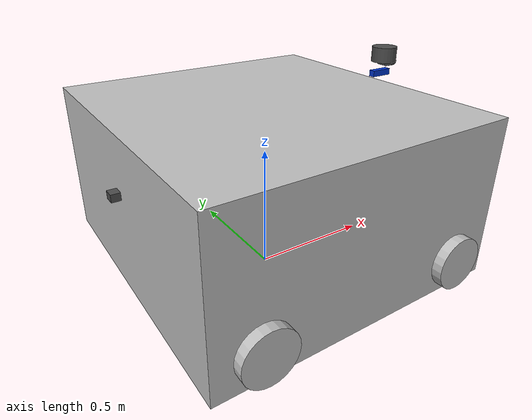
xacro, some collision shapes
<?xml version="1.0"?>
<robot name="tulpar_robot" xmlns:xacro="http://www.ros.org/wiki/xacro">

  <material name="aluminium">
    <color rgba="0.75 0.75 0.75 1.0"/>
  </material>

  <material name="black">
    <color rgba="0.1 0.1 0.1 1.0"/>
  </material>

  <material name="camera_blue">
    <color rgba="0.0 0.2 0.8 1.0"/>
  </material>

  <material name="sensor_gray">
    <color rgba="0.3 0.3 0.3 1.0"/>
  </material>

  <link name="base_footprint"/>

  <joint name="base_joint" type="fixed">
    <parent link="base_footprint"/>
    <child link="base_link"/>
    <origin xyz="0 0 0.200" rpy="0 0 0"/>
  </joint>

  <link name="base_link">
    <visual>
      <origin xyz="0.592 -0.225 0.110" rpy="0 0 1.5708"/>
      <geometry>
        <mesh filename="package://tulpar_description/meshes/tulpar_govde_final.stl" scale="0.001 0.001 0.001"/>
      </geometry>
      <material name="aluminium"/>
    </visual>
    <collision>
      <origin xyz="0 0 0.1925" rpy="0 0 0"/>
      <geometry>
        <box size="1.150 1.207 0.615"/>
      </geometry>
    </collision>
    <inertial>
      <mass value="65.0"/>
      <origin xyz="0 0 0" rpy="0 0 0"/>
      <inertia ixx="9.94" ixy="0.0" ixz="0.0" iyy="9.21" iyz="0.0" izz="15.06"/>
    </inertial>
  </link>

  <xacro:macro name="wheel" params="name x y">
    <link name="${name}">
      <visual>
    <geometry>
      <cylinder radius="0.10" length="0.125"/>
    </geometry>
    <material name="aluminium"/>
  </visual>

      <collision>
        <geometry>
          <cylinder radius="0.20" length="0.12"/>
        </geometry>
      </collision>
      <inertial>
        <mass value="3.5"/>
        <inertia ixx="0.039" ixy="0" ixz="0" iyy="0.039" iyz="0" izz="0.070"/>
      </inertial>
    </link>

    <joint name="joint_${name}" type="continuous">
      <parent link="base_link"/>
      <child link="${name}"/>
      <origin xyz="${x} ${y} 0" rpy="-1.5708 0 0"/>
      <axis xyz="0 0 1"/>
      <dynamics damping="0.1" friction="0.5"/>
    </joint>
  </xacro:macro>

  <xacro:wheel name="wheel_fl" x="0.4" y="0.58"/>
  <xacro:wheel name="wheel_rl" x="-0.4" y="0.58"/>
  <xacro:wheel name="wheel_fr" x="0.4" y="-0.58"/>
  <xacro:wheel name="wheel_rr" x="-0.4" y="-0.58"/>

  <link name="lidar_link">
    <visual>
      <geometry>
        <cylinder radius="0.05" length="0.06"/>
      </geometry>
      <material name="sensor_gray"/>
    </visual>
    <inertial>
      <mass value="0.25"/>
      <inertia ixx="0.0015" ixy="0" ixz="0" iyy="0.0015" iyz="0" izz="0.0015"/>
    </inertial>
  </link>

  <joint name="lidar_joint" type="fixed">
    <parent link="base_link"/>
    <child link="lidar_link"/>
    <origin xyz="0.58 -0.015 0.61" rpy="0 0 0"/>
  </joint>

  <link name="laser_frame"/>
  <joint name="laser_frame_joint" type="fixed">
    <parent link="lidar_link"/>
    <child link="laser_frame"/>
    <origin xyz="0 0 0" rpy="0 0 0"/>
  </joint>

  <!-- Intel RealSense D435if depth camera. -->
  <link name="d435if_link">
    <visual>
      <geometry>
        <box size="0.09 0.025 0.025"/>
      </geometry>
      <material name="camera_blue"/>
    </visual>
    <inertial>
      <mass value="0.08"/>
      <inertia ixx="0.001" ixy="0" ixz="0" iyy="0.001" iyz="0" izz="0.001"/>
    </inertial>
  </link>

  <joint name="d435if_joint" type="fixed">
    <parent link="base_link"/>
    <child link="d435if_link"/>
    <origin xyz="0.58 0.0 0.53" rpy="0 0 0"/>
  </joint>

  <link name="d435if_color_frame"/>
  <joint name="d435if_color_joint" type="fixed">
    <parent link="d435if_link"/>
    <child link="d435if_color_frame"/>
    <origin xyz="0 0 0" rpy="0 0 0"/>
  </joint>

  <link name="d435if_color_optical_frame"/>
  <joint name="d435if_color_optical_joint" type="fixed">
    <parent link="d435if_color_frame"/>
    <child link="d435if_color_optical_frame"/>
    <origin xyz="0 0 0" rpy="-1.5708 0 -1.5708"/>
  </joint>

  <link name="d435if_depth_frame"/>
  <joint name="d435if_depth_joint" type="fixed">
    <parent link="d435if_link"/>
    <child link="d435if_depth_frame"/>
    <origin xyz="0 0 0" rpy="0 0 0"/>
  </joint>

  <link name="d435if_depth_optical_frame"/>
  <joint name="d435if_depth_optical_joint" type="fixed">
    <parent link="d435if_depth_frame"/>
    <child link="d435if_depth_optical_frame"/>
    <origin xyz="0 0 0" rpy="-1.5708 0 -1.5708"/>
  </joint>

  <!-- Raspberry Pi HQ camera with 16 mm telephoto lens (atis kamerasi). -->
  <link name="rpi_hq_camera_link">
    <visual>
      <origin xyz="-0.008 0 0" rpy="0 0 0"/>
      <geometry>
        <box size="0.038 0.038 0.018"/>
      </geometry>
      <material name="sensor_gray"/>
    </visual>
    <visual>
      <origin xyz="0.020 0 0" rpy="0 1.5708 0"/>
      <geometry>
        <cylinder radius="0.018" length="0.040"/>
      </geometry>
      <material name="black"/>
    </visual>
    <inertial>
      <mass value="0.09"/>
      <inertia ixx="0.0008" ixy="0" ixz="0" iyy="0.0008" iyz="0" izz="0.0005"/>
    </inertial>
  </link>

  <joint name="rpi_hq_camera_joint" type="fixed">
    <parent link="base_link"/>
    <child link="rpi_hq_camera_link"/>
    <origin xyz="0.58 -0.03 0.58" rpy="0 0 0"/>
  </joint>

  <link name="rpi_hq_camera_optical_frame"/>
  <joint name="rpi_hq_camera_optical_joint" type="fixed">
    <parent link="rpi_hq_camera_link"/>
    <child link="rpi_hq_camera_optical_frame"/>
    <origin xyz="0 0 0" rpy="-1.5708 0 -1.5708"/>
  </joint>

  <!-- Rear camera: SJCAM SJ4000 action camera. -->
  <link name="rear_camera_link">
    <visual>
      <geometry>
        <box size="0.059 0.041 0.029"/>
      </geometry>
      <material name="sensor_gray"/>
    </visual>
    <inertial>
      <mass value="0.058"/>
      <inertia ixx="0.0006" ixy="0" ixz="0" iyy="0.0006" iyz="0" izz="0.0006"/>
    </inertial>
  </link>

  <joint name="rear_camera_joint" type="fixed">
    <parent link="base_link"/>
    <child link="rear_camera_link"/>
    <origin xyz="-0.58 0.0 0.28" rpy="0 0 3.14159"/>
  </joint>

  <link name="rear_camera_optical_frame"/>
  <joint name="rear_camera_optical_joint" type="fixed">
    <parent link="rear_camera_link"/>
    <child link="rear_camera_optical_frame"/>
    <origin xyz="0 0 0" rpy="-1.5708 0 -1.5708"/>
  </joint>

  <gazebo>
    <plugin filename="gz-sim-joint-state-publisher-system" name="gz::sim::systems::JointStatePublisher">
      <topic>/joint_states</topic>
    </plugin>
  </gazebo>

  <gazebo>
    <plugin filename="gz-sim-diff-drive-system" name="gz::sim::systems::DiffDrive">
      <left_joint>joint_wheel_fl</left_joint>
      <left_joint>joint_wheel_rl</left_joint>
      <right_joint>joint_wheel_fr</right_joint>
      <right_joint>joint_wheel_rr</right_joint>
      <wheel_separation>1.16</wheel_separation>
      <wheel_radius>0.20</wheel_radius>
      <max_linear_velocity>1.0</max_linear_velocity>
      <max_angular_velocity>3.0</max_angular_velocity>
      <max_wheel_torque>25.0</max_wheel_torque>
      <max_linear_acceleration>2.0</max_linear_acceleration>
      <topic>/cmd_vel</topic>
      <odom_topic>/odom</odom_topic>
      <frame_id>odom</frame_id>
      <child_frame_id>base_footprint</child_frame_id>
      <odom_publish_frequency>30</odom_publish_frequency>
    </plugin>
  </gazebo>

  <gazebo reference="lidar_link">
    <sensor name="ydlidar_tg30" type="gpu_lidar">
     <update_rate>2</update_rate>
      <topic>/scan</topic>
      <lidar>
        <scan>
          <horizontal>
            <samples>360</samples>
            <resolution>1</resolution>
            <min_angle>-3.14159</min_angle>
            <max_angle>3.14159</max_angle>
          </horizontal>
        </scan>
        <range>
          <min>0.05</min>
          <max>30.0</max>
          <resolution>0.01</resolution>
        </range>
      </lidar>
      <always_on>true</always_on>
      <visualize>false</visualize>
    </sensor>
  </gazebo>

  <gazebo reference="d435if_link">
    <sensor name="d435if_depth" type="depth_camera">
    <update_rate>2</update_rate>

      <topic>/d435if/depth/image_raw</topic>
      <camera>
        <horizontal_fov>1.5184</horizontal_fov>
       <image>
      <width>320</width>
      <height>240</height>
          <format>R8G8B8</format>
        </image>
        <clip>
          <near>0.20</near>
          <far>10.0</far>
        </clip>
      </camera>
      <always_on>true</always_on>
      <visualize>false</visualize>
    </sensor>
  </gazebo>

  <gazebo reference="rpi_hq_camera_link">
    <sensor name="rpi_hq_camera" type="camera">
      <update_rate>1</update_rate>
      <topic>/rpi_hq_camera/image_raw</topic>
      <camera>
        <horizontal_fov>0.6606</horizontal_fov>
        <image>
          <width>320</width>
  <height>240</height>

          <format>R8G8B8</format>
        </image>
        <clip>
          <near>0.10</near>
          <far>100.0</far>
        </clip>
      </camera>
      <always_on>true</always_on>
      <visualize>false</visualize>
    </sensor>
  </gazebo>

  <gazebo reference="rear_camera_link">
    <sensor name="rear_camera" type="camera">
      <update_rate>1</update_rate>
      <topic>/rear_camera/image_raw</topic>
      <camera>
        <horizontal_fov>1.5708</horizontal_fov>
        <image>
          <width>320</width>
          <height>240</height>
          <format>R8G8B8</format>
        </image>
        <clip>
          <near>0.10</near>
          <far>100.0</far>
        </clip>
      </camera>
      <always_on>true</always_on>
      <visualize>false</visualize>
    </sensor>
  </gazebo>

  <gazebo reference="wheel_fl">
    <mu1>1.0</mu1>
    <mu2>1.0</mu2>
    <kp>1000000.0</kp>
    <kd>1.0</kd>
  </gazebo>

  <gazebo reference="wheel_rl">
    <mu1>1.0</mu1>
    <mu2>1.0</mu2>
    <kp>1000000.0</kp>
    <kd>1.0</kd>
  </gazebo>

  <gazebo reference="wheel_fr">
    <mu1>1.0</mu1>
    <mu2>1.0</mu2>
    <kp>1000000.0</kp>
    <kd>1.0</kd>
  </gazebo>

  <gazebo reference="wheel_rr">
    <mu1>1.0</mu1>
    <mu2>1.0</mu2>
    <kp>1000000.0</kp>
    <kd>1.0</kd>
  </gazebo>

</robot>
